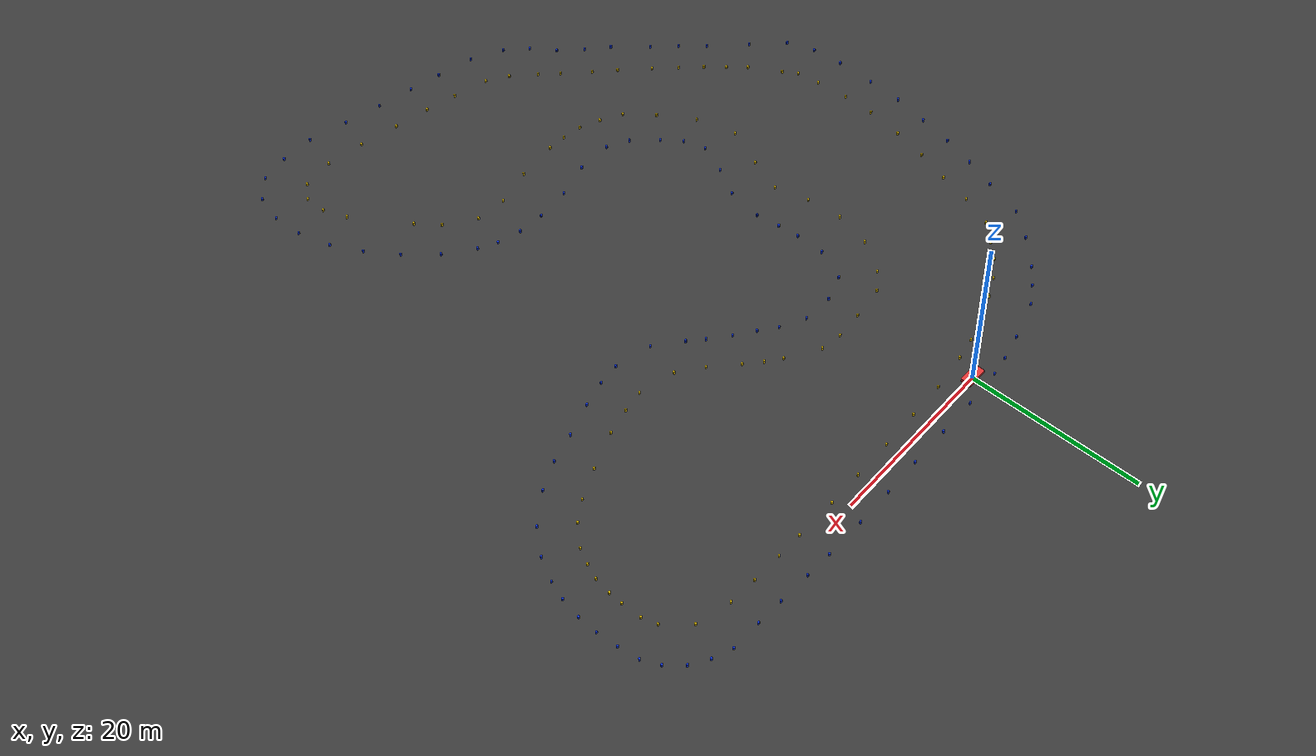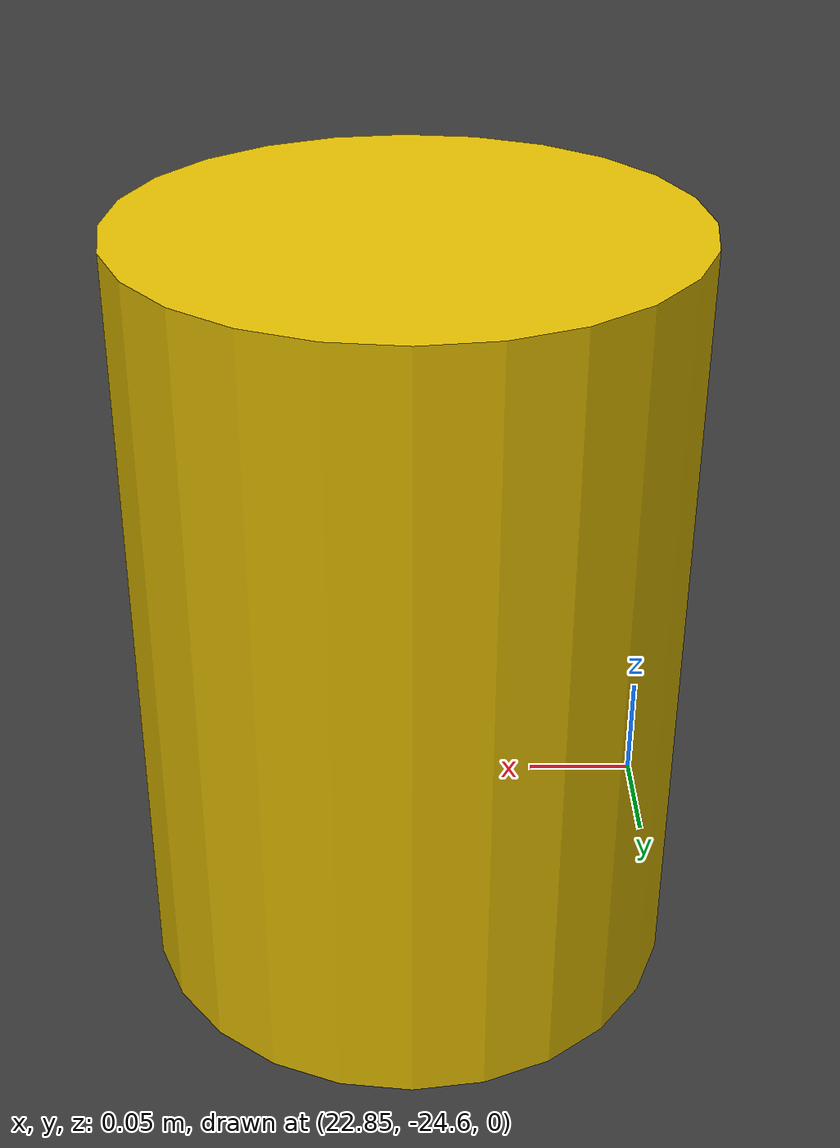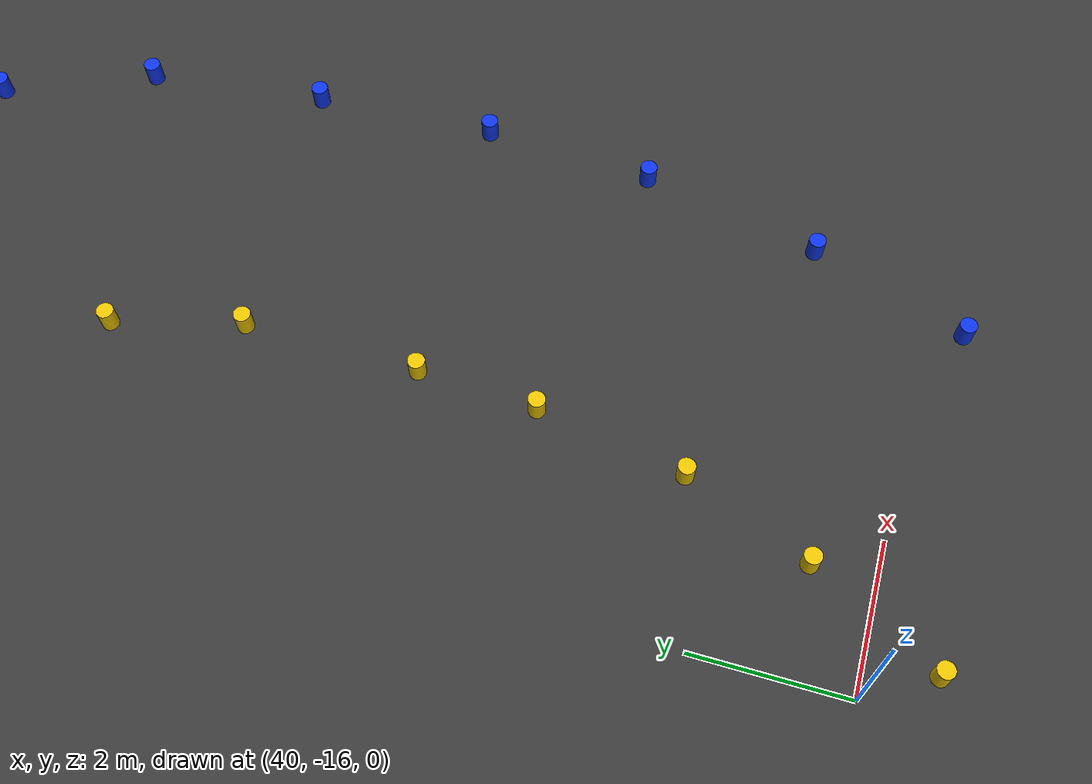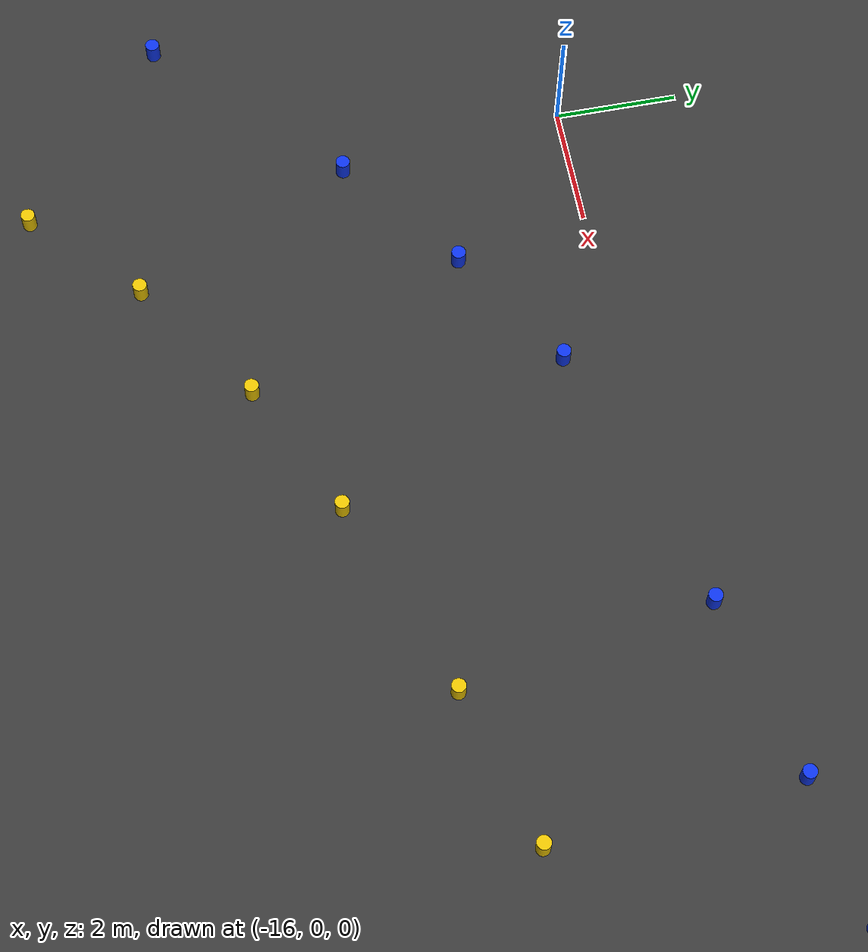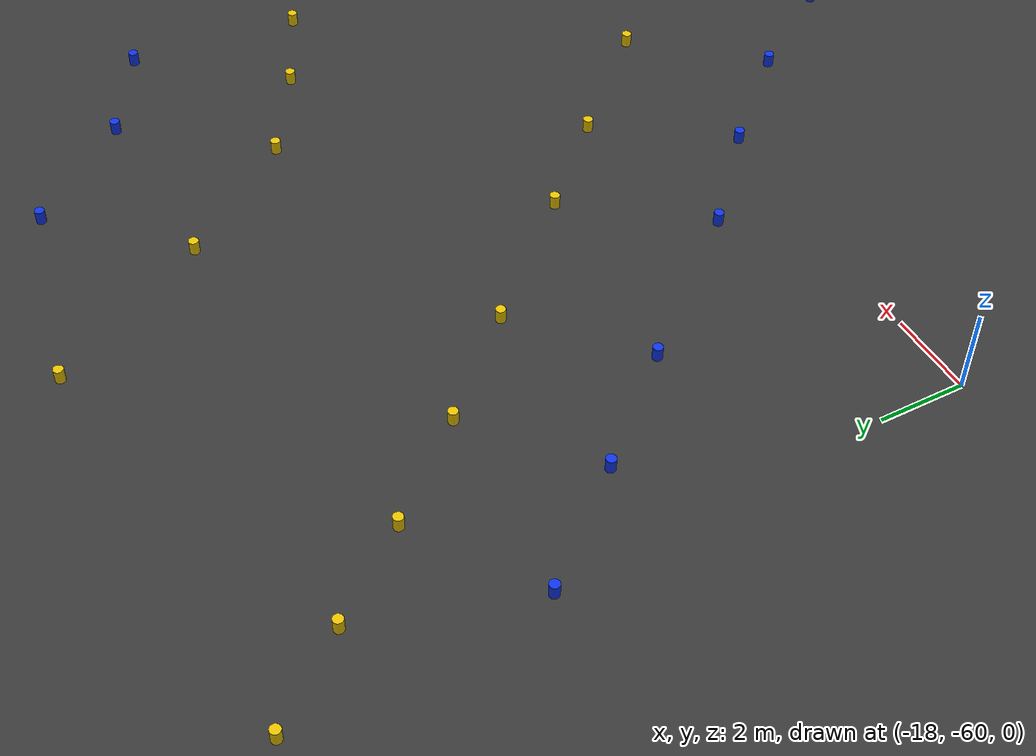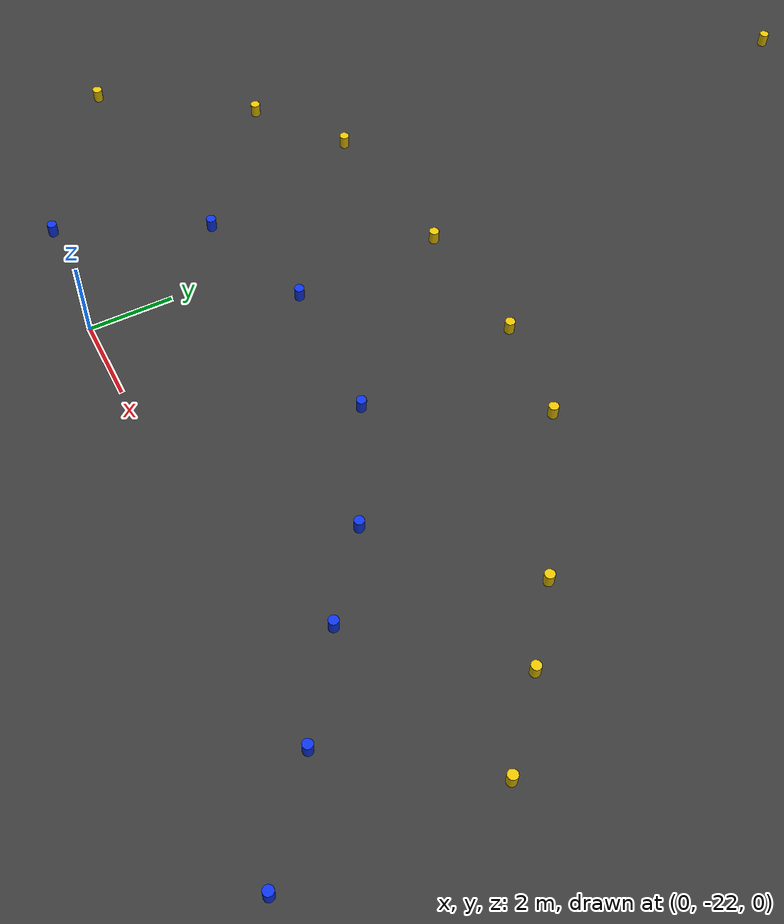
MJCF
<mujoco model="fsae_FSG">
  <option timestep="0.002" gravity="0 0 -9.81"/>

  <include file="../scene_base.xml"/>

  <worldbody>
    <light name="sun" pos="0 0 50" dir="0 0 -1" directional="true"
           diffuse="0.8 0.8 0.8" specular="0.2 0.2 0.2"/>

    <geom name="ground" type="plane" size="400 400 0.1"
          rgba="0.22 0.22 0.22 1" contype="1" conaffinity="1"/>

    <include file="FSG_cones.xml"/>

    <include file="../car.xml"/>
  </worldbody>
</mujoco>

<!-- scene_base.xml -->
<mujocoinclude>
<visual>
  <headlight ambient="0.4 0.4 0.4" diffuse="0.7 0.7 0.7" specular="0 0 0"/>
  <rgba haze="0.15 0.25 0.35 1"/>
  <quality shadowsize="4096"/>
</visual>
</mujocoinclude>

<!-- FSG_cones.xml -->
<!-- Auto-generated from gazebo/models/track/tracks_yaml/FSG.yaml — do not edit by hand -->
<mujocoinclude>
<geom name="cone_blue_0" type="cylinder" pos="-1.7667 1.4703 0.1625" size="0.114 0.1625" rgba="0.05 0.2 0.9 1" contype="1" conaffinity="1"/>
<geom name="cone_blue_1" type="cylinder" pos="2.7609 1.7154 0.1625" size="0.114 0.1625" rgba="0.05 0.2 0.9 1" contype="1" conaffinity="1"/>
<geom name="cone_blue_2" type="cylinder" pos="7.2786 1.7270 0.1625" size="0.114 0.1625" rgba="0.05 0.2 0.9 1" contype="1" conaffinity="1"/>
<geom name="cone_blue_3" type="cylinder" pos="12.0350 1.7770 0.1625" size="0.114 0.1625" rgba="0.05 0.2 0.9 1" contype="1" conaffinity="1"/>
<geom name="cone_blue_4" type="cylinder" pos="16.5392 1.8575 0.1625" size="0.114 0.1625" rgba="0.05 0.2 0.9 1" contype="1" conaffinity="1"/>
<geom name="cone_blue_5" type="cylinder" pos="21.0336 1.9058 0.1625" size="0.114 0.1625" rgba="0.05 0.2 0.9 1" contype="1" conaffinity="1"/>
<geom name="cone_blue_6" type="cylinder" pos="25.8245 1.8237 0.1625" size="0.114 0.1625" rgba="0.05 0.2 0.9 1" contype="1" conaffinity="1"/>
<geom name="cone_blue_7" type="cylinder" pos="29.0081 1.6882 0.1625" size="0.114 0.1625" rgba="0.05 0.2 0.9 1" contype="1" conaffinity="1"/>
<geom name="cone_blue_8" type="cylinder" pos="32.8540 1.5324 0.1625" size="0.114 0.1625" rgba="0.05 0.2 0.9 1" contype="1" conaffinity="1"/>
<geom name="cone_blue_9" type="cylinder" pos="36.0541 1.4060 0.1625" size="0.114 0.1625" rgba="0.05 0.2 0.9 1" contype="1" conaffinity="1"/>
<geom name="cone_blue_10" type="cylinder" pos="39.6403 1.3329 0.1625" size="0.114 0.1625" rgba="0.05 0.2 0.9 1" contype="1" conaffinity="1"/>
<geom name="cone_blue_11" type="cylinder" pos="41.8411 0.4617 0.1625" size="0.114 0.1625" rgba="0.05 0.2 0.9 1" contype="1" conaffinity="1"/>
<geom name="cone_blue_12" type="cylinder" pos="43.7949 -0.8243 0.1625" size="0.114 0.1625" rgba="0.05 0.2 0.9 1" contype="1" conaffinity="1"/>
<geom name="cone_blue_13" type="cylinder" pos="45.3121 -2.6312 0.1625" size="0.114 0.1625" rgba="0.05 0.2 0.9 1" contype="1" conaffinity="1"/>
<geom name="cone_blue_14" type="cylinder" pos="46.1554 -4.6250 0.1625" size="0.114 0.1625" rgba="0.05 0.2 0.9 1" contype="1" conaffinity="1"/>
<geom name="cone_blue_15" type="cylinder" pos="46.4221 -7.1025 0.1625" size="0.114 0.1625" rgba="0.05 0.2 0.9 1" contype="1" conaffinity="1"/>
<geom name="cone_blue_16" type="cylinder" pos="46.5322 -9.6071 0.1625" size="0.114 0.1625" rgba="0.05 0.2 0.9 1" contype="1" conaffinity="1"/>
<geom name="cone_blue_17" type="cylinder" pos="46.3761 -11.9525 0.1625" size="0.114 0.1625" rgba="0.05 0.2 0.9 1" contype="1" conaffinity="1"/>
<geom name="cone_blue_18" type="cylinder" pos="45.8402 -14.4087 0.1625" size="0.114 0.1625" rgba="0.05 0.2 0.9 1" contype="1" conaffinity="1"/>
<geom name="cone_blue_19" type="cylinder" pos="45.0924 -16.5198 0.1625" size="0.114 0.1625" rgba="0.05 0.2 0.9 1" contype="1" conaffinity="1"/>
<geom name="cone_blue_20" type="cylinder" pos="43.6631 -19.0953 0.1625" size="0.114 0.1625" rgba="0.05 0.2 0.9 1" contype="1" conaffinity="1"/>
<geom name="cone_blue_21" type="cylinder" pos="41.3715 -21.7455 0.1625" size="0.114 0.1625" rgba="0.05 0.2 0.9 1" contype="1" conaffinity="1"/>
<geom name="cone_blue_22" type="cylinder" pos="37.8901 -24.0830 0.1625" size="0.114 0.1625" rgba="0.05 0.2 0.9 1" contype="1" conaffinity="1"/>
<geom name="cone_blue_23" type="cylinder" pos="34.6199 -25.5377 0.1625" size="0.114 0.1625" rgba="0.05 0.2 0.9 1" contype="1" conaffinity="1"/>
<geom name="cone_blue_24" type="cylinder" pos="31.2378 -26.4075 0.1625" size="0.114 0.1625" rgba="0.05 0.2 0.9 1" contype="1" conaffinity="1"/>
<geom name="cone_blue_25" type="cylinder" pos="27.4351 -27.5947 0.1625" size="0.114 0.1625" rgba="0.05 0.2 0.9 1" contype="1" conaffinity="1"/>
<geom name="cone_blue_26" type="cylinder" pos="24.4867 -28.2712 0.1625" size="0.114 0.1625" rgba="0.05 0.2 0.9 1" contype="1" conaffinity="1"/>
<geom name="cone_blue_27" type="cylinder" pos="21.9399 -28.5393 0.1625" size="0.114 0.1625" rgba="0.05 0.2 0.9 1" contype="1" conaffinity="1"/>
<geom name="cone_blue_28" type="cylinder" pos="17.7762 -27.4994 0.1625" size="0.114 0.1625" rgba="0.05 0.2 0.9 1" contype="1" conaffinity="1"/>
<geom name="cone_blue_29" type="cylinder" pos="14.9727 -25.1546 0.1625" size="0.114 0.1625" rgba="0.05 0.2 0.9 1" contype="1" conaffinity="1"/>
<geom name="cone_blue_30" type="cylinder" pos="13.4640 -23.7030 0.1625" size="0.114 0.1625" rgba="0.05 0.2 0.9 1" contype="1" conaffinity="1"/>
<geom name="cone_blue_31" type="cylinder" pos="11.3518 -21.9376 0.1625" size="0.114 0.1625" rgba="0.05 0.2 0.9 1" contype="1" conaffinity="1"/>
<geom name="cone_blue_32" type="cylinder" pos="9.2848 -20.3903 0.1625" size="0.114 0.1625" rgba="0.05 0.2 0.9 1" contype="1" conaffinity="1"/>
<geom name="cone_blue_33" type="cylinder" pos="7.4834 -18.9196 0.1625" size="0.114 0.1625" rgba="0.05 0.2 0.9 1" contype="1" conaffinity="1"/>
<geom name="cone_blue_34" type="cylinder" pos="4.7760 -17.4981 0.1625" size="0.114 0.1625" rgba="0.05 0.2 0.9 1" contype="1" conaffinity="1"/>
<geom name="cone_blue_35" type="cylinder" pos="1.2876 -17.3332 0.1625" size="0.114 0.1625" rgba="0.05 0.2 0.9 1" contype="1" conaffinity="1"/>
<geom name="cone_blue_36" type="cylinder" pos="-1.6339 -18.2759 0.1625" size="0.114 0.1625" rgba="0.05 0.2 0.9 1" contype="1" conaffinity="1"/>
<geom name="cone_blue_37" type="cylinder" pos="-3.1795 -21.7291 0.1625" size="0.114 0.1625" rgba="0.05 0.2 0.9 1" contype="1" conaffinity="1"/>
<geom name="cone_blue_38" type="cylinder" pos="-3.2737 -25.0205 0.1625" size="0.114 0.1625" rgba="0.05 0.2 0.9 1" contype="1" conaffinity="1"/>
<geom name="cone_blue_39" type="cylinder" pos="-3.0780 -27.4283 0.1625" size="0.114 0.1625" rgba="0.05 0.2 0.9 1" contype="1" conaffinity="1"/>
<geom name="cone_blue_40" type="cylinder" pos="-2.7759 -30.0829 0.1625" size="0.114 0.1625" rgba="0.05 0.2 0.9 1" contype="1" conaffinity="1"/>
<geom name="cone_blue_41" type="cylinder" pos="-3.4181 -34.0824 0.1625" size="0.114 0.1625" rgba="0.05 0.2 0.9 1" contype="1" conaffinity="1"/>
<geom name="cone_blue_42" type="cylinder" pos="-5.1704 -37.1482 0.1625" size="0.114 0.1625" rgba="0.05 0.2 0.9 1" contype="1" conaffinity="1"/>
<geom name="cone_blue_43" type="cylinder" pos="-6.5504 -40.3913 0.1625" size="0.114 0.1625" rgba="0.05 0.2 0.9 1" contype="1" conaffinity="1"/>
<geom name="cone_blue_44" type="cylinder" pos="-5.8645 -42.8616 0.1625" size="0.114 0.1625" rgba="0.05 0.2 0.9 1" contype="1" conaffinity="1"/>
<geom name="cone_blue_45" type="cylinder" pos="-4.3776 -44.9487 0.1625" size="0.114 0.1625" rgba="0.05 0.2 0.9 1" contype="1" conaffinity="1"/>
<geom name="cone_blue_46" type="cylinder" pos="-2.1730 -47.4768 0.1625" size="0.114 0.1625" rgba="0.05 0.2 0.9 1" contype="1" conaffinity="1"/>
<geom name="cone_blue_47" type="cylinder" pos="0.1479 -48.7640 0.1625" size="0.114 0.1625" rgba="0.05 0.2 0.9 1" contype="1" conaffinity="1"/>
<geom name="cone_blue_48" type="cylinder" pos="4.0886 -48.8794 0.1625" size="0.114 0.1625" rgba="0.05 0.2 0.9 1" contype="1" conaffinity="1"/>
<geom name="cone_blue_49" type="cylinder" pos="8.0548 -47.9160 0.1625" size="0.114 0.1625" rgba="0.05 0.2 0.9 1" contype="1" conaffinity="1"/>
<geom name="cone_blue_50" type="cylinder" pos="11.9599 -47.6551 0.1625" size="0.114 0.1625" rgba="0.05 0.2 0.9 1" contype="1" conaffinity="1"/>
<geom name="cone_blue_51" type="cylinder" pos="14.9592 -47.9350 0.1625" size="0.114 0.1625" rgba="0.05 0.2 0.9 1" contype="1" conaffinity="1"/>
<geom name="cone_blue_52" type="cylinder" pos="17.6076 -48.6755 0.1625" size="0.114 0.1625" rgba="0.05 0.2 0.9 1" contype="1" conaffinity="1"/>
<geom name="cone_blue_53" type="cylinder" pos="19.5705 -49.7755 0.1625" size="0.114 0.1625" rgba="0.05 0.2 0.9 1" contype="1" conaffinity="1"/>
<geom name="cone_blue_54" type="cylinder" pos="22.6065 -52.1837 0.1625" size="0.114 0.1625" rgba="0.05 0.2 0.9 1" contype="1" conaffinity="1"/>
<geom name="cone_blue_55" type="cylinder" pos="25.3403 -55.3911 0.1625" size="0.114 0.1625" rgba="0.05 0.2 0.9 1" contype="1" conaffinity="1"/>
<geom name="cone_blue_56" type="cylinder" pos="27.5260 -58.7277 0.1625" size="0.114 0.1625" rgba="0.05 0.2 0.9 1" contype="1" conaffinity="1"/>
<geom name="cone_blue_57" type="cylinder" pos="29.1638 -62.0334 0.1625" size="0.114 0.1625" rgba="0.05 0.2 0.9 1" contype="1" conaffinity="1"/>
<geom name="cone_blue_58" type="cylinder" pos="30.1007 -65.7220 0.1625" size="0.114 0.1625" rgba="0.05 0.2 0.9 1" contype="1" conaffinity="1"/>
<geom name="cone_blue_59" type="cylinder" pos="30.1847 -69.0224 0.1625" size="0.114 0.1625" rgba="0.05 0.2 0.9 1" contype="1" conaffinity="1"/>
<geom name="cone_blue_60" type="cylinder" pos="29.2832 -72.0738 0.1625" size="0.114 0.1625" rgba="0.05 0.2 0.9 1" contype="1" conaffinity="1"/>
<geom name="cone_blue_61" type="cylinder" pos="26.9897 -73.9625 0.1625" size="0.114 0.1625" rgba="0.05 0.2 0.9 1" contype="1" conaffinity="1"/>
<geom name="cone_blue_62" type="cylinder" pos="23.7650 -74.3959 0.1625" size="0.114 0.1625" rgba="0.05 0.2 0.9 1" contype="1" conaffinity="1"/>
<geom name="cone_blue_63" type="cylinder" pos="19.9834 -74.2501 0.1625" size="0.114 0.1625" rgba="0.05 0.2 0.9 1" contype="1" conaffinity="1"/>
<geom name="cone_blue_64" type="cylinder" pos="15.7009 -73.0300 0.1625" size="0.114 0.1625" rgba="0.05 0.2 0.9 1" contype="1" conaffinity="1"/>
<geom name="cone_blue_65" type="cylinder" pos="11.5244 -71.9856 0.1625" size="0.114 0.1625" rgba="0.05 0.2 0.9 1" contype="1" conaffinity="1"/>
<geom name="cone_blue_66" type="cylinder" pos="7.5542 -71.0144 0.1625" size="0.114 0.1625" rgba="0.05 0.2 0.9 1" contype="1" conaffinity="1"/>
<geom name="cone_blue_67" type="cylinder" pos="3.9931 -70.1475 0.1625" size="0.114 0.1625" rgba="0.05 0.2 0.9 1" contype="1" conaffinity="1"/>
<geom name="cone_blue_68" type="cylinder" pos="-0.0668 -69.1029 0.1625" size="0.114 0.1625" rgba="0.05 0.2 0.9 1" contype="1" conaffinity="1"/>
<geom name="cone_blue_69" type="cylinder" pos="-3.4423 -67.2310 0.1625" size="0.114 0.1625" rgba="0.05 0.2 0.9 1" contype="1" conaffinity="1"/>
<geom name="cone_blue_70" type="cylinder" pos="-5.4904 -65.1120 0.1625" size="0.114 0.1625" rgba="0.05 0.2 0.9 1" contype="1" conaffinity="1"/>
<geom name="cone_blue_71" type="cylinder" pos="-7.2459 -62.5962 0.1625" size="0.114 0.1625" rgba="0.05 0.2 0.9 1" contype="1" conaffinity="1"/>
<geom name="cone_blue_72" type="cylinder" pos="-9.3612 -60.3147 0.1625" size="0.114 0.1625" rgba="0.05 0.2 0.9 1" contype="1" conaffinity="1"/>
<geom name="cone_blue_73" type="cylinder" pos="-11.5452 -58.3123 0.1625" size="0.114 0.1625" rgba="0.05 0.2 0.9 1" contype="1" conaffinity="1"/>
<geom name="cone_blue_74" type="cylinder" pos="-14.4152 -54.9343 0.1625" size="0.114 0.1625" rgba="0.05 0.2 0.9 1" contype="1" conaffinity="1"/>
<geom name="cone_blue_75" type="cylinder" pos="-16.5187 -52.5612 0.1625" size="0.114 0.1625" rgba="0.05 0.2 0.9 1" contype="1" conaffinity="1"/>
<geom name="cone_blue_76" type="cylinder" pos="-18.5795 -50.1394 0.1625" size="0.114 0.1625" rgba="0.05 0.2 0.9 1" contype="1" conaffinity="1"/>
<geom name="cone_blue_77" type="cylinder" pos="-21.8124 -46.6211 0.1625" size="0.114 0.1625" rgba="0.05 0.2 0.9 1" contype="1" conaffinity="1"/>
<geom name="cone_blue_78" type="cylinder" pos="-24.7267 -43.4752 0.1625" size="0.114 0.1625" rgba="0.05 0.2 0.9 1" contype="1" conaffinity="1"/>
<geom name="cone_blue_79" type="cylinder" pos="-25.7503 -40.3981 0.1625" size="0.114 0.1625" rgba="0.05 0.2 0.9 1" contype="1" conaffinity="1"/>
<geom name="cone_blue_80" type="cylinder" pos="-26.0477 -36.9701 0.1625" size="0.114 0.1625" rgba="0.05 0.2 0.9 1" contype="1" conaffinity="1"/>
<geom name="cone_blue_81" type="cylinder" pos="-25.9316 -32.6193 0.1625" size="0.114 0.1625" rgba="0.05 0.2 0.9 1" contype="1" conaffinity="1"/>
<geom name="cone_blue_82" type="cylinder" pos="-25.7263 -28.6441 0.1625" size="0.114 0.1625" rgba="0.05 0.2 0.9 1" contype="1" conaffinity="1"/>
<geom name="cone_blue_83" type="cylinder" pos="-25.0014 -24.6763 0.1625" size="0.114 0.1625" rgba="0.05 0.2 0.9 1" contype="1" conaffinity="1"/>
<geom name="cone_blue_84" type="cylinder" pos="-24.2922 -20.8633 0.1625" size="0.114 0.1625" rgba="0.05 0.2 0.9 1" contype="1" conaffinity="1"/>
<geom name="cone_blue_85" type="cylinder" pos="-23.3050 -17.2036 0.1625" size="0.114 0.1625" rgba="0.05 0.2 0.9 1" contype="1" conaffinity="1"/>
<geom name="cone_blue_86" type="cylinder" pos="-22.1317 -13.6424 0.1625" size="0.114 0.1625" rgba="0.05 0.2 0.9 1" contype="1" conaffinity="1"/>
<geom name="cone_blue_87" type="cylinder" pos="-20.7885 -9.2806 0.1625" size="0.114 0.1625" rgba="0.05 0.2 0.9 1" contype="1" conaffinity="1"/>
<geom name="cone_blue_88" type="cylinder" pos="-18.4632 -6.4125 0.1625" size="0.114 0.1625" rgba="0.05 0.2 0.9 1" contype="1" conaffinity="1"/>
<geom name="cone_blue_89" type="cylinder" pos="-15.6023 -3.6870 0.1625" size="0.114 0.1625" rgba="0.05 0.2 0.9 1" contype="1" conaffinity="1"/>
<geom name="cone_blue_90" type="cylinder" pos="-13.5745 -2.1660 0.1625" size="0.114 0.1625" rgba="0.05 0.2 0.9 1" contype="1" conaffinity="1"/>
<geom name="cone_blue_91" type="cylinder" pos="-11.5146 -0.8929 0.1625" size="0.114 0.1625" rgba="0.05 0.2 0.9 1" contype="1" conaffinity="1"/>
<geom name="cone_blue_92" type="cylinder" pos="-7.0434 0.4402 0.1625" size="0.114 0.1625" rgba="0.05 0.2 0.9 1" contype="1" conaffinity="1"/>
<geom name="cone_blue_93" type="cylinder" pos="-4.1093 1.1096 0.1625" size="0.114 0.1625" rgba="0.05 0.2 0.9 1" contype="1" conaffinity="1"/>
<geom name="cone_blue_94" type="cylinder" pos="-1.7667 1.4703 0.1625" size="0.114 0.1625" rgba="0.05 0.2 0.9 1" contype="1" conaffinity="1"/>
<geom name="cone_yellow_0" type="cylinder" pos="-1.2054 -2.4342 0.1625" size="0.114 0.1625" rgba="0.9 0.75 0.0 1" contype="1" conaffinity="1"/>
<geom name="cone_yellow_1" type="cylinder" pos="3.1781 -1.9323 0.1625" size="0.114 0.1625" rgba="0.9 0.75 0.0 1" contype="1" conaffinity="1"/>
<geom name="cone_yellow_2" type="cylinder" pos="7.4856 -1.8135 0.1625" size="0.114 0.1625" rgba="0.9 0.75 0.0 1" contype="1" conaffinity="1"/>
<geom name="cone_yellow_3" type="cylinder" pos="12.1317 -1.6840 0.1625" size="0.114 0.1625" rgba="0.9 0.75 0.0 1" contype="1" conaffinity="1"/>
<geom name="cone_yellow_4" type="cylinder" pos="16.7907 -1.6340 0.1625" size="0.114 0.1625" rgba="0.9 0.75 0.0 1" contype="1" conaffinity="1"/>
<geom name="cone_yellow_5" type="cylinder" pos="21.0160 -1.5777 0.1625" size="0.114 0.1625" rgba="0.9 0.75 0.0 1" contype="1" conaffinity="1"/>
<geom name="cone_yellow_6" type="cylinder" pos="25.9493 -1.6844 0.1625" size="0.114 0.1625" rgba="0.9 0.75 0.0 1" contype="1" conaffinity="1"/>
<geom name="cone_yellow_7" type="cylinder" pos="29.0481 -1.7289 0.1625" size="0.114 0.1625" rgba="0.9 0.75 0.0 1" contype="1" conaffinity="1"/>
<geom name="cone_yellow_8" type="cylinder" pos="32.6120 -1.8370 0.1625" size="0.114 0.1625" rgba="0.9 0.75 0.0 1" contype="1" conaffinity="1"/>
<geom name="cone_yellow_9" type="cylinder" pos="35.9588 -2.0252 0.1625" size="0.114 0.1625" rgba="0.9 0.75 0.0 1" contype="1" conaffinity="1"/>
<geom name="cone_yellow_10" type="cylinder" pos="39.9083 -3.0469 0.1625" size="0.114 0.1625" rgba="0.9 0.75 0.0 1" contype="1" conaffinity="1"/>
<geom name="cone_yellow_11" type="cylinder" pos="42.1979 -5.7312 0.1625" size="0.114 0.1625" rgba="0.9 0.75 0.0 1" contype="1" conaffinity="1"/>
<geom name="cone_yellow_12" type="cylinder" pos="42.6440 -7.4576 0.1625" size="0.114 0.1625" rgba="0.9 0.75 0.0 1" contype="1" conaffinity="1"/>
<geom name="cone_yellow_13" type="cylinder" pos="42.6222 -9.8456 0.1625" size="0.114 0.1625" rgba="0.9 0.75 0.0 1" contype="1" conaffinity="1"/>
<geom name="cone_yellow_14" type="cylinder" pos="42.5241 -11.4708 0.1625" size="0.114 0.1625" rgba="0.9 0.75 0.0 1" contype="1" conaffinity="1"/>
<geom name="cone_yellow_15" type="cylinder" pos="42.1597 -13.4860 0.1625" size="0.114 0.1625" rgba="0.9 0.75 0.0 1" contype="1" conaffinity="1"/>
<geom name="cone_yellow_16" type="cylinder" pos="41.4562 -15.1819 0.1625" size="0.114 0.1625" rgba="0.9 0.75 0.0 1" contype="1" conaffinity="1"/>
<geom name="cone_yellow_17" type="cylinder" pos="40.5326 -16.8798 0.1625" size="0.114 0.1625" rgba="0.9 0.75 0.0 1" contype="1" conaffinity="1"/>
<geom name="cone_yellow_18" type="cylinder" pos="38.5181 -18.9989 0.1625" size="0.114 0.1625" rgba="0.9 0.75 0.0 1" contype="1" conaffinity="1"/>
<geom name="cone_yellow_19" type="cylinder" pos="36.2040 -20.4709 0.1625" size="0.114 0.1625" rgba="0.9 0.75 0.0 1" contype="1" conaffinity="1"/>
<geom name="cone_yellow_20" type="cylinder" pos="32.7587 -21.9738 0.1625" size="0.114 0.1625" rgba="0.9 0.75 0.0 1" contype="1" conaffinity="1"/>
<geom name="cone_yellow_21" type="cylinder" pos="28.4736 -23.4818 0.1625" size="0.114 0.1625" rgba="0.9 0.75 0.0 1" contype="1" conaffinity="1"/>
<geom name="cone_yellow_22" type="cylinder" pos="25.4437 -24.1715 0.1625" size="0.114 0.1625" rgba="0.9 0.75 0.0 1" contype="1" conaffinity="1"/>
<geom name="cone_yellow_23" type="cylinder" pos="22.9643 -24.4952 0.1625" size="0.114 0.1625" rgba="0.9 0.75 0.0 1" contype="1" conaffinity="1"/>
<geom name="cone_yellow_24" type="cylinder" pos="18.7935 -23.4676 0.1625" size="0.114 0.1625" rgba="0.9 0.75 0.0 1" contype="1" conaffinity="1"/>
<geom name="cone_yellow_25" type="cylinder" pos="16.1738 -21.4525 0.1625" size="0.114 0.1625" rgba="0.9 0.75 0.0 1" contype="1" conaffinity="1"/>
<geom name="cone_yellow_26" type="cylinder" pos="13.5639 -18.8669 0.1625" size="0.114 0.1625" rgba="0.9 0.75 0.0 1" contype="1" conaffinity="1"/>
<geom name="cone_yellow_27" type="cylinder" pos="11.8896 -17.3643 0.1625" size="0.114 0.1625" rgba="0.9 0.75 0.0 1" contype="1" conaffinity="1"/>
<geom name="cone_yellow_28" type="cylinder" pos="10.3036 -16.0994 0.1625" size="0.114 0.1625" rgba="0.9 0.75 0.0 1" contype="1" conaffinity="1"/>
<geom name="cone_yellow_29" type="cylinder" pos="6.7995 -13.8661 0.1625" size="0.114 0.1625" rgba="0.9 0.75 0.0 1" contype="1" conaffinity="1"/>
<geom name="cone_yellow_30" type="cylinder" pos="4.3283 -13.5116 0.1625" size="0.114 0.1625" rgba="0.9 0.75 0.0 1" contype="1" conaffinity="1"/>
<geom name="cone_yellow_31" type="cylinder" pos="1.1230 -13.7139 0.1625" size="0.114 0.1625" rgba="0.9 0.75 0.0 1" contype="1" conaffinity="1"/>
<geom name="cone_yellow_32" type="cylinder" pos="-2.7538 -14.1658 0.1625" size="0.114 0.1625" rgba="0.9 0.75 0.0 1" contype="1" conaffinity="1"/>
<geom name="cone_yellow_33" type="cylinder" pos="-4.8145 -15.6765 0.1625" size="0.114 0.1625" rgba="0.9 0.75 0.0 1" contype="1" conaffinity="1"/>
<geom name="cone_yellow_34" type="cylinder" pos="-7.1527 -19.0836 0.1625" size="0.114 0.1625" rgba="0.9 0.75 0.0 1" contype="1" conaffinity="1"/>
<geom name="cone_yellow_35" type="cylinder" pos="-8.1841 -23.2164 0.1625" size="0.114 0.1625" rgba="0.9 0.75 0.0 1" contype="1" conaffinity="1"/>
<geom name="cone_yellow_36" type="cylinder" pos="-7.9078 -27.2390 0.1625" size="0.114 0.1625" rgba="0.9 0.75 0.0 1" contype="1" conaffinity="1"/>
<geom name="cone_yellow_37" type="cylinder" pos="-7.0089 -31.0451 0.1625" size="0.114 0.1625" rgba="0.9 0.75 0.0 1" contype="1" conaffinity="1"/>
<geom name="cone_yellow_38" type="cylinder" pos="-8.4212 -34.9212 0.1625" size="0.114 0.1625" rgba="0.9 0.75 0.0 1" contype="1" conaffinity="1"/>
<geom name="cone_yellow_39" type="cylinder" pos="-10.3438 -39.3103 0.1625" size="0.114 0.1625" rgba="0.9 0.75 0.0 1" contype="1" conaffinity="1"/>
<geom name="cone_yellow_40" type="cylinder" pos="-9.2158 -43.8150 0.1625" size="0.114 0.1625" rgba="0.9 0.75 0.0 1" contype="1" conaffinity="1"/>
<geom name="cone_yellow_41" type="cylinder" pos="-6.9204 -47.6307 0.1625" size="0.114 0.1625" rgba="0.9 0.75 0.0 1" contype="1" conaffinity="1"/>
<geom name="cone_yellow_42" type="cylinder" pos="-4.6060 -50.5478 0.1625" size="0.114 0.1625" rgba="0.9 0.75 0.0 1" contype="1" conaffinity="1"/>
<geom name="cone_yellow_43" type="cylinder" pos="-2.3527 -51.8893 0.1625" size="0.114 0.1625" rgba="0.9 0.75 0.0 1" contype="1" conaffinity="1"/>
<geom name="cone_yellow_44" type="cylinder" pos="-0.1658 -52.8908 0.1625" size="0.114 0.1625" rgba="0.9 0.75 0.0 1" contype="1" conaffinity="1"/>
<geom name="cone_yellow_45" type="cylinder" pos="2.0412 -53.2723 0.1625" size="0.114 0.1625" rgba="0.9 0.75 0.0 1" contype="1" conaffinity="1"/>
<geom name="cone_yellow_46" type="cylinder" pos="4.1574 -53.3650 0.1625" size="0.114 0.1625" rgba="0.9 0.75 0.0 1" contype="1" conaffinity="1"/>
<geom name="cone_yellow_47" type="cylinder" pos="8.7518 -53.0574 0.1625" size="0.114 0.1625" rgba="0.9 0.75 0.0 1" contype="1" conaffinity="1"/>
<geom name="cone_yellow_48" type="cylinder" pos="12.9969 -52.1645 0.1625" size="0.114 0.1625" rgba="0.9 0.75 0.0 1" contype="1" conaffinity="1"/>
<geom name="cone_yellow_49" type="cylinder" pos="16.4464 -52.5517 0.1625" size="0.114 0.1625" rgba="0.9 0.75 0.0 1" contype="1" conaffinity="1"/>
<geom name="cone_yellow_50" type="cylinder" pos="19.5895 -54.8799 0.1625" size="0.114 0.1625" rgba="0.9 0.75 0.0 1" contype="1" conaffinity="1"/>
<geom name="cone_yellow_51" type="cylinder" pos="21.4046 -57.2886 0.1625" size="0.114 0.1625" rgba="0.9 0.75 0.0 1" contype="1" conaffinity="1"/>
<geom name="cone_yellow_52" type="cylinder" pos="25.2624 -63.3929 0.1625" size="0.114 0.1625" rgba="0.9 0.75 0.0 1" contype="1" conaffinity="1"/>
<geom name="cone_yellow_53" type="cylinder" pos="26.2042 -65.9767 0.1625" size="0.114 0.1625" rgba="0.9 0.75 0.0 1" contype="1" conaffinity="1"/>
<geom name="cone_yellow_54" type="cylinder" pos="26.1475 -68.3556 0.1625" size="0.114 0.1625" rgba="0.9 0.75 0.0 1" contype="1" conaffinity="1"/>
<geom name="cone_yellow_55" type="cylinder" pos="24.7101 -69.9159 0.1625" size="0.114 0.1625" rgba="0.9 0.75 0.0 1" contype="1" conaffinity="1"/>
<geom name="cone_yellow_56" type="cylinder" pos="21.1220 -70.2596 0.1625" size="0.114 0.1625" rgba="0.9 0.75 0.0 1" contype="1" conaffinity="1"/>
<geom name="cone_yellow_57" type="cylinder" pos="16.8930 -69.4649 0.1625" size="0.114 0.1625" rgba="0.9 0.75 0.0 1" contype="1" conaffinity="1"/>
<geom name="cone_yellow_58" type="cylinder" pos="12.5506 -68.4204 0.1625" size="0.114 0.1625" rgba="0.9 0.75 0.0 1" contype="1" conaffinity="1"/>
<geom name="cone_yellow_59" type="cylinder" pos="8.6141 -67.5245 0.1625" size="0.114 0.1625" rgba="0.9 0.75 0.0 1" contype="1" conaffinity="1"/>
<geom name="cone_yellow_60" type="cylinder" pos="5.1299 -66.6364 0.1625" size="0.114 0.1625" rgba="0.9 0.75 0.0 1" contype="1" conaffinity="1"/>
<geom name="cone_yellow_61" type="cylinder" pos="1.2918 -65.5188 0.1625" size="0.114 0.1625" rgba="0.9 0.75 0.0 1" contype="1" conaffinity="1"/>
<geom name="cone_yellow_62" type="cylinder" pos="-0.9115 -64.0005 0.1625" size="0.114 0.1625" rgba="0.9 0.75 0.0 1" contype="1" conaffinity="1"/>
<geom name="cone_yellow_63" type="cylinder" pos="-3.1928 -61.7591 0.1625" size="0.114 0.1625" rgba="0.9 0.75 0.0 1" contype="1" conaffinity="1"/>
<geom name="cone_yellow_64" type="cylinder" pos="-4.8898 -59.9218 0.1625" size="0.114 0.1625" rgba="0.9 0.75 0.0 1" contype="1" conaffinity="1"/>
<geom name="cone_yellow_65" type="cylinder" pos="-7.3427 -57.3791 0.1625" size="0.114 0.1625" rgba="0.9 0.75 0.0 1" contype="1" conaffinity="1"/>
<geom name="cone_yellow_66" type="cylinder" pos="-9.3245 -55.3649 0.1625" size="0.114 0.1625" rgba="0.9 0.75 0.0 1" contype="1" conaffinity="1"/>
<geom name="cone_yellow_67" type="cylinder" pos="-11.9271 -52.5859 0.1625" size="0.114 0.1625" rgba="0.9 0.75 0.0 1" contype="1" conaffinity="1"/>
<geom name="cone_yellow_68" type="cylinder" pos="-13.9907 -50.4051 0.1625" size="0.114 0.1625" rgba="0.9 0.75 0.0 1" contype="1" conaffinity="1"/>
<geom name="cone_yellow_69" type="cylinder" pos="-15.8556 -48.2919 0.1625" size="0.114 0.1625" rgba="0.9 0.75 0.0 1" contype="1" conaffinity="1"/>
<geom name="cone_yellow_70" type="cylinder" pos="-17.4214 -46.3404 0.1625" size="0.114 0.1625" rgba="0.9 0.75 0.0 1" contype="1" conaffinity="1"/>
<geom name="cone_yellow_71" type="cylinder" pos="-18.9635 -44.4720 0.1625" size="0.114 0.1625" rgba="0.9 0.75 0.0 1" contype="1" conaffinity="1"/>
<geom name="cone_yellow_72" type="cylinder" pos="-20.8690 -41.1217 0.1625" size="0.114 0.1625" rgba="0.9 0.75 0.0 1" contype="1" conaffinity="1"/>
<geom name="cone_yellow_73" type="cylinder" pos="-21.7831 -39.5535 0.1625" size="0.114 0.1625" rgba="0.9 0.75 0.0 1" contype="1" conaffinity="1"/>
<geom name="cone_yellow_74" type="cylinder" pos="-22.1184 -36.9809 0.1625" size="0.114 0.1625" rgba="0.9 0.75 0.0 1" contype="1" conaffinity="1"/>
<geom name="cone_yellow_75" type="cylinder" pos="-22.3782 -33.3755 0.1625" size="0.114 0.1625" rgba="0.9 0.75 0.0 1" contype="1" conaffinity="1"/>
<geom name="cone_yellow_76" type="cylinder" pos="-22.2892 -29.8055 0.1625" size="0.114 0.1625" rgba="0.9 0.75 0.0 1" contype="1" conaffinity="1"/>
<geom name="cone_yellow_77" type="cylinder" pos="-21.6835 -25.6726 0.1625" size="0.114 0.1625" rgba="0.9 0.75 0.0 1" contype="1" conaffinity="1"/>
<geom name="cone_yellow_78" type="cylinder" pos="-20.8396 -21.7996 0.1625" size="0.114 0.1625" rgba="0.9 0.75 0.0 1" contype="1" conaffinity="1"/>
<geom name="cone_yellow_79" type="cylinder" pos="-19.7339 -18.0672 0.1625" size="0.114 0.1625" rgba="0.9 0.75 0.0 1" contype="1" conaffinity="1"/>
<geom name="cone_yellow_80" type="cylinder" pos="-18.7998 -14.3691 0.1625" size="0.114 0.1625" rgba="0.9 0.75 0.0 1" contype="1" conaffinity="1"/>
<geom name="cone_yellow_81" type="cylinder" pos="-17.4899 -10.8448 0.1625" size="0.114 0.1625" rgba="0.9 0.75 0.0 1" contype="1" conaffinity="1"/>
<geom name="cone_yellow_82" type="cylinder" pos="-15.5612 -8.8696 0.1625" size="0.114 0.1625" rgba="0.9 0.75 0.0 1" contype="1" conaffinity="1"/>
<geom name="cone_yellow_83" type="cylinder" pos="-13.9416 -7.2788 0.1625" size="0.114 0.1625" rgba="0.9 0.75 0.0 1" contype="1" conaffinity="1"/>
<geom name="cone_yellow_84" type="cylinder" pos="-11.8316 -5.8212 0.1625" size="0.114 0.1625" rgba="0.9 0.75 0.0 1" contype="1" conaffinity="1"/>
<geom name="cone_yellow_85" type="cylinder" pos="-9.6029 -4.7861 0.1625" size="0.114 0.1625" rgba="0.9 0.75 0.0 1" contype="1" conaffinity="1"/>
<geom name="cone_yellow_86" type="cylinder" pos="-6.3578 -3.6278 0.1625" size="0.114 0.1625" rgba="0.9 0.75 0.0 1" contype="1" conaffinity="1"/>
<geom name="cone_yellow_87" type="cylinder" pos="-3.7964 -2.9047 0.1625" size="0.114 0.1625" rgba="0.9 0.75 0.0 1" contype="1" conaffinity="1"/>
<geom name="cone_yellow_88" type="cylinder" pos="-1.2054 -2.4342 0.1625" size="0.114 0.1625" rgba="0.9 0.75 0.0 1" contype="1" conaffinity="1"/>
</mujocoinclude>

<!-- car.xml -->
<mujocoinclude>
<body name="car" mocap="true" pos="0 0 0.4">
  <inertial pos="0 0 0" mass="1e-4" diaginertia="1e-9 1e-9 1e-9"/>
  <geom name="car_body" type="box"
        size="1.2 0.6 0.2"
        rgba="0.85 0.2 0.2 1"
        contype="0" conaffinity="0"/>
  <!-- LiDAR site: 0.75m forward, 0.15m above center -->
  <site name="lidar_site"
        pos="0.75 0 0.15"
        size="0.05" type="sphere" rgba="0.2 0.9 0.2 1"/>
</body>
</mujocoinclude>
